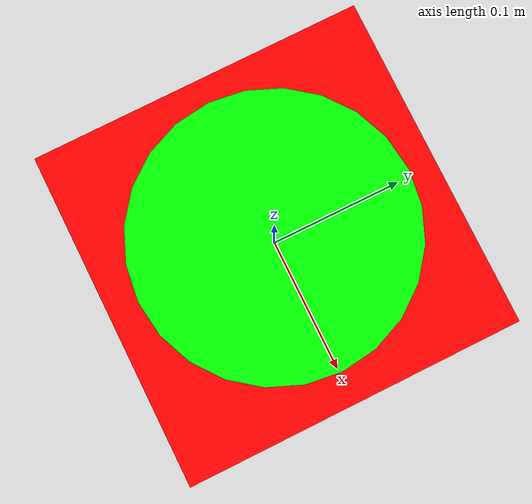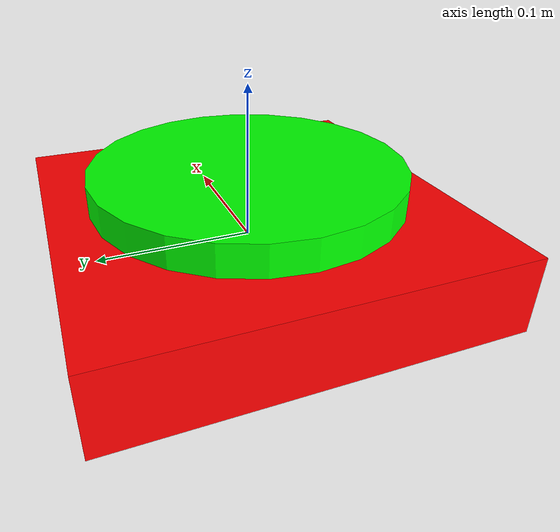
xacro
<?xml version="1.0"?>
<robot name="jenga_block" xmlns:xacro="http://www.ros.org/wiki/xacro">

    <material name="red">
        <color rgba="1 0 0 1"/>
    </material>

    <material name="green">
        <color rgba="0 1 0 1"/>
    </material>

    <link name="world" />

    <joint name="base_joint" type="fixed">
        <origin xyz="0 0 0" rpy="0 0 0"/>
        <parent link="world"/>
        <child link="jenga_base_link"/>
    </joint>

    <link name="jenga_base_link">
        <visual>
            <origin xyz="0 0 0" />
            <geometry>
                <box size="0.25 0.25 0.05"/>
            </geometry>
            <material name="red" />
        </visual>

        <collision>
            <origin xyz="0 0 0" />
            <geometry>
                <box size="0.25 0.25 0.05"/>
            </geometry>
        </collision>

        <inertial>
            <origin xyz="0 0 0" />
            <mass value="1.4"/>
            <inertia ixx="0.06591666666666665" ixy="0" ixz="0" iyy="0.06591666666666665" iyz="0" izz="0.13124999999999998"/>
        </inertial>
    </link>

    <joint name="base_rotation_joint" type="continuous">
        <origin xyz="0 0 0.04" rpy="0 0 0"/>
        <parent link="jenga_base_link"/>
        <child link="jenga_rotator_link"/>
        <axis xyz="0 0 1"/>
        <limit effort="1.0" velocity="0.01"/>
        <dynamics damping="0.05" friction="0.1"/>
    </joint>

    <link name="jenga_rotator_link">
        <visual>
            <origin xyz="0 0 0" rpy="0 0 0"/>
            <geometry>
                <cylinder radius="0.1" length="0.02"/>
            </geometry>
            <material name="green" />
        </visual>
        <collision>
            <origin xyz="0 0 0" rpy="0 0 0"/>
            <geometry>
                <cylinder radius="0.1" length="0.02"/>
            </geometry>
        </collision>
        <inertial>
            <origin xyz="0 0 0" rpy="0 0 0"/>
            <mass value="0.03"/>
            <inertia ixx="7.6e-5" ixy="0.0" ixz="0.0" iyy="7.6e-5" iyz="0.0" izz="0.00015000000000000001"/>
        </inertial>
    </link>

    <gazebo reference="jenga_base_link">
    <material>Gazebo/Red</material>
    <gravity>true</gravity>

    <surface>
        <friction>
        <ode>
            <mu>1.2</mu>
            <mu2>1.2</mu2>
            <fdir1>0 0 0</fdir1>
            <slip1>0.0</slip1>
            <slip2>0.0</slip2>
        </ode>
        </friction>
        <bounce>
        <restitution_coefficient>0.0</restitution_coefficient>
        <threshold>1.0</threshold>
        </bounce>
        <contact>
        <ode>
            <soft_cfm>0.00001</soft_cfm>
            <soft_erp>0.2</soft_erp>
            <kp>100000</kp>
            <kd>5000</kd>
            <max_vel>0.01</max_vel>
            <min_depth>0.001</min_depth>
        </ode>
        </contact>
    </surface>
    </gazebo>

    <gazebo reference="jenga_rotator_link">
        <material>Gazebo/Green</material>
        <gravity>true</gravity>

        <surface>
            <friction>
                <ode>
                    <mu>1.2</mu>
                    <mu2>1.2</mu2>
                    <fdir1>0 0 0</fdir1>
                    <slip1>0.0</slip1>
                    <slip2>0.0</slip2>
                </ode>
            </friction>
            <bounce>
                <restitution_coefficient>0.0</restitution_coefficient>
                <threshold>1.0</threshold>
            </bounce>
            <contact>
                <ode>
                    <soft_cfm>0.00001</soft_cfm>
                    <soft_erp>0.2</soft_erp>
                    <kp>10000</kp>
                    <kd>5000</kd>
                    <max_vel>0.01</max_vel>
                    <min_depth>0.001</min_depth>
                </ode>
            </contact>
        </surface>
    </gazebo>

    <ros2_control name="GazeboSystem" type="system">
        <hardware>
            <plugin>gazebo_ros2_control/GazeboSystem</plugin>
        </hardware>
        <joint name="base_rotation_joint">
            <command_interface name="effort" />
            <state_interface name="velocity" />
        </joint>
    </ros2_control>

    <gazebo>
        <plugin name="gazebo_ros2_control" filename="libgazebo_ros2_control.so">
            <parameters>$(find jenga_blocks)/config/base_controllers.yaml</parameters>
            <ros>
                <remapping>/joint_effort_controller/commands:=/base_rotator</remapping>
            </ros>
        </plugin>

    </gazebo>

</robot>
